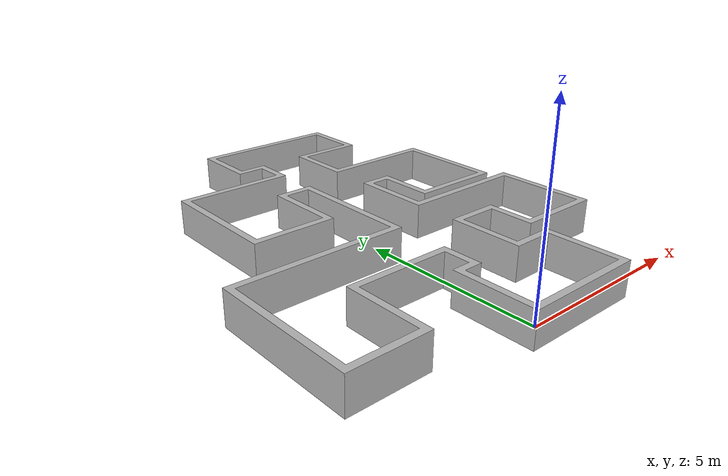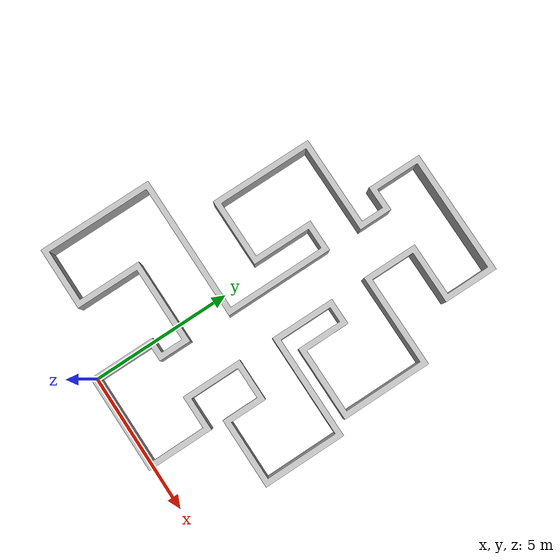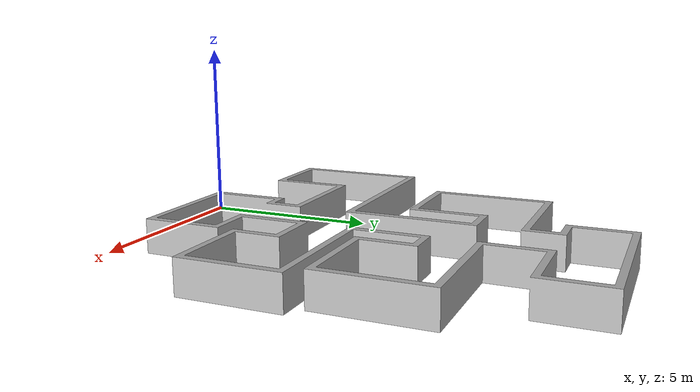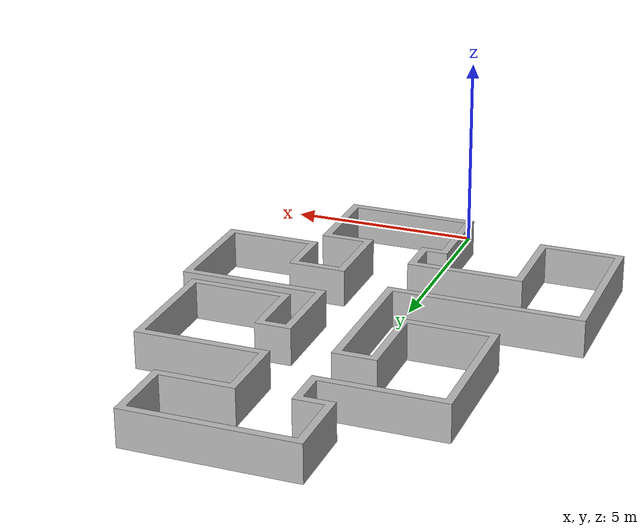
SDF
<?xml version="1.0"?>
<sdf version="1.5">
  <model name="tsp_map">
    <pose>0 0 0 0 0 0</pose>
    <static>true</static>
    <link name="map_link">
      <collision name="collision">
        <geometry>
          <mesh>
            <uri>model://tsp_map/meshes/tsp_map.stl</uri>
            <scale>0.1 0.1 1</scale>
          </mesh>
        </geometry>
      </collision>
      <visual name="map_visual">
        <material>
          <script>
            <name>MetalTexture</name>
          </script>
        </material>
        <geometry>
          <mesh>
            <uri>model://tsp_map/meshes/tsp_map.stl</uri>
            <scale>0.1 0.1 0.5</scale>
          </mesh>
        </geometry>
      </visual>
    </link>
  </model>
</sdf>
